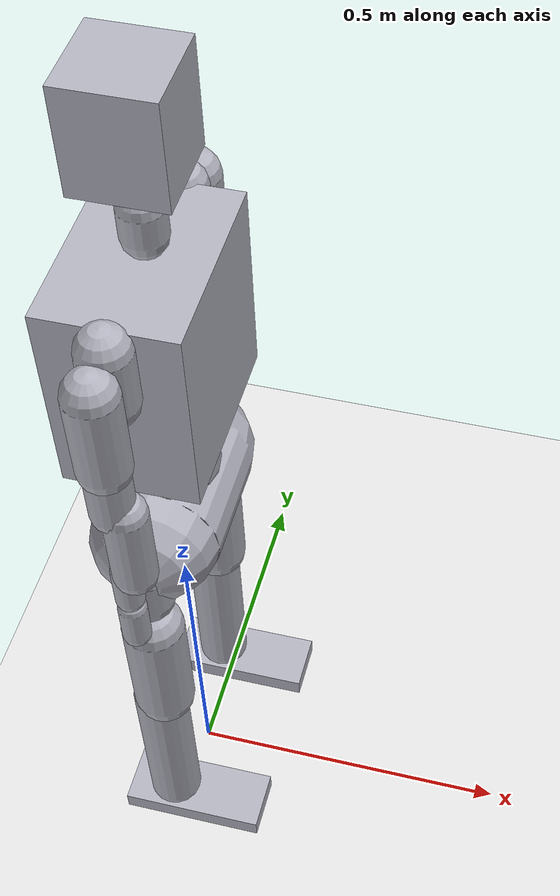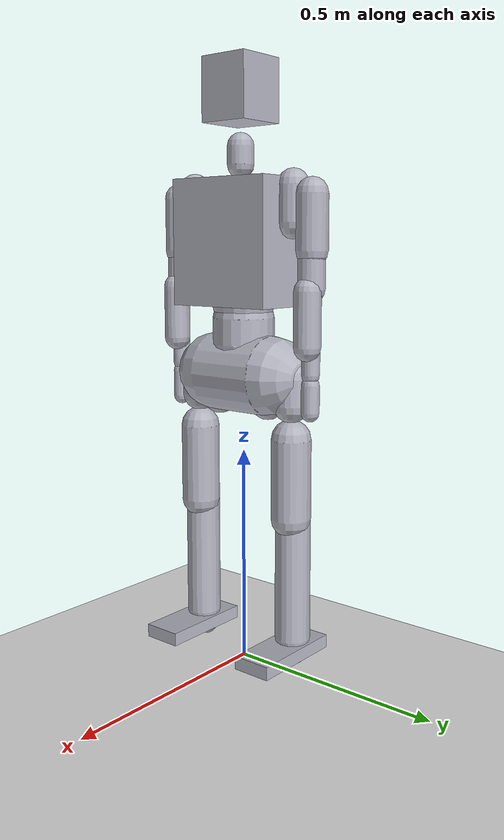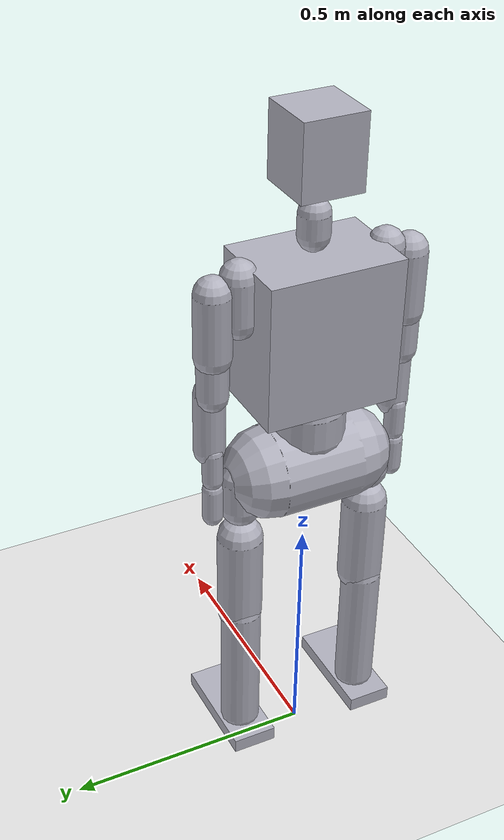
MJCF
<mujoco model="agibot_x2_primitives">
  <!-- AgiBot X2 kinematic chain with collision-primitive geometry.
       Vendor mesh assets unavailable at submission time; see docs/README.md. -->
  <compiler angle="radian" eulerseq="XYZ" autolimits="true"/>
  <option timestep="0.01" gravity="0 0 -9.81"/>

  <default>
    <default class="x2">
      <joint damping="0.5" armature="0.02" frictionloss="0.1"/>
      <default class="collision">
        <geom type="capsule" rgba="0.7 0.7 0.75 1" contype="1" conaffinity="1"/>
      </default>
      <default class="fixed_pose">
        <joint damping="5.0" stiffness="50.0"/>
      </default>
    </default>
  </default>

  <worldbody>
    <light diffuse=".6 .6 .6" pos="0 0 5" dir="0 0 -1"/>
    <geom name="floor" type="plane" size="10 10 0.1" rgba="0.9 0.9 0.9 1"/>

    <body name="pelvis" pos="0 0 0.68" childclass="x2">
      <joint name="base_x" type="slide" axis="1 0 0" damping="5" limited="false"/>
      <joint name="base_y" type="slide" axis="0 1 0" damping="5" limited="false"/>
      <joint name="base_yaw" type="hinge" axis="0 0 1" damping="2" limited="false"/>
      <geom class="collision" name="pelvis_geom" size="0.09 0.08" pos="0 0 0" quat="0.7071 0.7071 0 0"/>

      <body name="left_hip_pitch_link" pos="0 0.07135 0">
        <joint name="left_hip_pitch_joint" class="fixed_pose" type="hinge" axis="0 1 0" range="-0.2 0.2"/>
        <geom class="collision" name="left_hip_pitch_geom" size="0.04 0.03" pos="0 0 -0.03"/>
        <body name="left_hip_roll_link" pos="-0.000575 0.0657 0">
          <joint name="left_hip_roll_joint" class="fixed_pose" type="hinge" axis="1 0 0" range="-0.15 0.15"/>
          <geom class="collision" name="left_hip_roll_geom" size="0.04 0.03" pos="0 0 -0.03"/>
          <body name="left_hip_yaw_link" pos="0.000575 0 -0.13685">
            <joint name="left_hip_yaw_joint" class="fixed_pose" type="hinge" axis="0 0 1" range="-0.15 0.15"/>
            <geom class="collision" name="left_thigh_geom" size="0.045 0.09" pos="0 0 -0.09"/>
            <body name="left_knee_link" pos="-0.00766 0.000225 -0.1831">
              <joint name="left_knee_joint" class="fixed_pose" type="hinge" axis="0 1 0" range="0 0.3"/>
              <geom class="collision" name="left_shank_geom" size="0.04 0.14" pos="0 0 -0.14"/>
              <body name="left_ankle_pitch_link" pos="-0.01 -0.000125 -0.282">
                <joint name="left_ankle_pitch_joint" class="fixed_pose" type="hinge" axis="0 1 0" range="-0.15 0.15"/>
                <geom class="collision" name="left_ankle_pitch_geom" size="0.025 0.02" pos="0 0 -0.02"/>
                <body name="left_ankle_roll_link" pos="-0.00175 0 0">
                  <joint name="left_ankle_roll_joint" class="fixed_pose" type="hinge" axis="1 0 0" range="-0.1 0.1"/>
                  <geom class="collision" name="left_foot_geom" type="box" size="0.11 0.045 0.015" pos="0.05 0 -0.02"/>
                </body>
              </body>
            </body>
          </body>
        </body>
      </body>

      <body name="right_hip_pitch_link" pos="0 -0.07135 0">
        <joint name="right_hip_pitch_joint" class="fixed_pose" type="hinge" axis="0 1 0" range="-0.2 0.2"/>
        <geom class="collision" name="right_hip_pitch_geom" size="0.04 0.03" pos="0 0 -0.03"/>
        <body name="right_hip_roll_link" pos="0 -0.0657 0">
          <joint name="right_hip_roll_joint" class="fixed_pose" type="hinge" axis="1 0 0" range="-0.15 0.15"/>
          <geom class="collision" name="right_hip_roll_geom" size="0.04 0.03" pos="0 0 -0.03"/>
          <body name="right_hip_yaw_link" pos="0 0 -0.13685">
            <joint name="right_hip_yaw_joint" class="fixed_pose" type="hinge" axis="0 0 1" range="-0.15 0.15"/>
            <geom class="collision" name="right_thigh_geom" size="0.045 0.09" pos="0 0 -0.09"/>
            <body name="right_knee_link" pos="-0.00766 -0.000225 -0.1831">
              <joint name="right_knee_joint" class="fixed_pose" type="hinge" axis="0 1 0" range="0 0.3"/>
              <geom class="collision" name="right_shank_geom" size="0.04 0.14" pos="0 0 -0.14"/>
              <body name="right_ankle_pitch_link" pos="-0.01 0.000125 -0.282">
                <joint name="right_ankle_pitch_joint" class="fixed_pose" type="hinge" axis="0 1 0" range="-0.15 0.15"/>
                <geom class="collision" name="right_ankle_pitch_geom" size="0.025 0.02" pos="0 0 -0.02"/>
                <body name="right_ankle_roll_link" pos="-0.00175 0 0">
                  <joint name="right_ankle_roll_joint" class="fixed_pose" type="hinge" axis="1 0 0" range="-0.1 0.1"/>
                  <geom class="collision" name="right_foot_geom" type="box" size="0.11 0.045 0.015" pos="0.05 0 -0.02"/>
                </body>
              </body>
            </body>
          </body>
        </body>
      </body>

      <body name="waist_yaw_link" pos="0 0 0.06706">
        <joint name="waist_yaw_joint" class="fixed_pose" type="hinge" axis="0 0 1" range="-0.1 0.1"/>
        <geom class="collision" name="waist_yaw_geom" size="0.07 0.03" pos="0 0 0.03"/>
        <body name="waist_pitch_link" pos="0 0 0.0880106">
          <joint name="waist_pitch_joint" class="fixed_pose" type="hinge" axis="0 1 0" range="-0.1 0.1"/>
          <geom class="collision" name="waist_pitch_geom" size="0.07 0.03" pos="0 0 0.03"/>
          <body name="torso_link">
            <joint name="waist_roll_joint" class="fixed_pose" type="hinge" axis="1 0 0" range="-0.1 0.1"/>
            <geom class="collision" type="box" name="torso_geom" size="0.09 0.13 0.14" pos="0 0 0.14"/>

            <body name="left_shoulder_pitch_link" pos="0.0033 0.143032 0.241648">
              <joint name="left_shoulder_pitch_joint" class="fixed_pose" type="hinge" axis="0 1 0" range="-0.2 0.2"/>
              <geom class="collision" name="left_shoulder_geom" size="0.035 0.04" pos="0 0 -0.02"/>
              <body name="left_shoulder_roll_link" pos="-0.0005 0.0495 0">
                <joint name="left_shoulder_roll_joint" class="fixed_pose" type="hinge" axis="1 0 0" range="-0.15 0.15"/>
                <geom class="collision" name="left_upper_arm_geom" size="0.035 0.06" pos="0 0 -0.06"/>
                <body name="left_shoulder_yaw_link" pos="0.00122 0 -0.121195">
                  <joint name="left_shoulder_yaw_joint" class="fixed_pose" type="hinge" axis="0 0 1" range="-0.15 0.15"/>
                  <geom class="collision" name="left_upper_arm2_geom" size="0.03 0.04" pos="0 0 -0.04"/>
                  <body name="left_elbow_link" pos="0.014 0.0002 -0.08295">
                    <joint name="left_elbow_joint" class="fixed_pose" type="hinge" axis="0 1 0" range="0 0.2"/>
                    <geom class="collision" name="left_forearm_geom" size="0.03 0.06" pos="0 0 -0.06"/>
                    <body name="left_wrist_yaw_link" pos="-0.01328 -0.0001 -0.120576">
                      <joint name="left_wrist_yaw_joint" class="fixed_pose" type="hinge" axis="0 0 1" range="-0.1 0.1"/>
                      <geom class="collision" name="left_wrist_geom" size="0.02 0.03" pos="0 0 -0.03"/>
                      <body name="left_wrist_pitch_link" pos="0.00049 0 -0.081999">
                        <joint name="left_wrist_pitch_joint" class="fixed_pose" type="hinge" axis="0 1 0" range="-0.1 0.1"/>
                        <geom class="collision" name="left_wrist_pitch_geom" size="0.018 0.015" pos="0 0 -0.015"/>
                        <body name="left_wrist_roll_link">
                          <joint name="left_wrist_roll_joint" class="fixed_pose" type="hinge" axis="1 0 0" range="-0.1 0.1"/>
                          <geom class="collision" name="left_hand_geom" size="0.02 0.03" pos="0 0 -0.03"/>
                        </body>
                      </body>
                    </body>
                  </body>
                </body>
              </body>
            </body>

            <body name="right_shoulder_pitch_link" pos="0.0033 -0.143031 0.241648">
              <joint name="right_shoulder_pitch_joint" class="fixed_pose" type="hinge" axis="0 1 0" range="-0.2 0.2"/>
              <geom class="collision" name="right_shoulder_geom" size="0.035 0.04" pos="0 0 -0.02"/>
              <body name="right_shoulder_roll_link" pos="-0.0005 -0.0495 0">
                <joint name="right_shoulder_roll_joint" class="fixed_pose" type="hinge" axis="1 0 0" range="-0.15 0.15"/>
                <geom class="collision" name="right_upper_arm_geom" size="0.035 0.06" pos="0 0 -0.06"/>
                <body name="right_shoulder_yaw_link" pos="0.0005 0 -0.1212">
                  <joint name="right_shoulder_yaw_joint" class="fixed_pose" type="hinge" axis="0 0 1" range="-0.15 0.15"/>
                  <geom class="collision" name="right_upper_arm2_geom" size="0.03 0.04" pos="0 0 -0.04"/>
                  <body name="right_elbow_link" pos="0.014 -0.0002 -0.08295">
                    <joint name="right_elbow_joint" class="fixed_pose" type="hinge" axis="0 1 0" range="0 0.2"/>
                    <geom class="collision" name="right_forearm_geom" size="0.03 0.06" pos="0 0 -0.06"/>
                    <body name="right_wrist_yaw_link" pos="-0.014 0.0001 -0.120694">
                      <joint name="right_wrist_yaw_joint" class="fixed_pose" type="hinge" axis="0 0 1" range="-0.1 0.1"/>
                      <geom class="collision" name="right_wrist_geom" size="0.02 0.03" pos="0 0 -0.03"/>
                      <body name="right_wrist_pitch_link" pos="0 0 -0.0818">
                        <joint name="right_wrist_pitch_joint" class="fixed_pose" type="hinge" axis="0 1 0" range="-0.1 0.1"/>
                        <geom class="collision" name="right_wrist_pitch_geom" size="0.018 0.015" pos="0 0 -0.015"/>
                        <body name="right_wrist_roll_link">
                          <joint name="right_wrist_roll_joint" class="fixed_pose" type="hinge" axis="1 0 0" range="-0.1 0.1"/>
                          <geom class="collision" name="right_hand_geom" size="0.02 0.03" pos="0 0 -0.03"/>
                        </body>
                      </body>
                    </body>
                  </body>
                </body>
              </body>
            </body>

            <body name="head_yaw_link" pos="0.00835 0 0.309397">
              <geom class="collision" name="head_yaw_geom" size="0.03 0.02" pos="0 0 0.02"/>
              <body name="head_pitch_link" pos="0 0 0.0889">
                <geom class="collision" type="box" name="head_geom" size="0.06 0.06 0.07" pos="0 0 0.07"/>
              </body>
            </body>
          </body>
        </body>
      </body>
    </body>

    <!-- Obstacle placeholders for the navigation task; positions are
         overridden per-episode by the episode config, not hardcoded here. -->
  </worldbody>

  <actuator>
    <velocity name="drive_x" joint="base_x" kv="200" ctrlrange="-0.6 0.6"/>
    <velocity name="drive_y" joint="base_y" kv="200" ctrlrange="-0.6 0.6"/>
  </actuator>
</mujoco>
